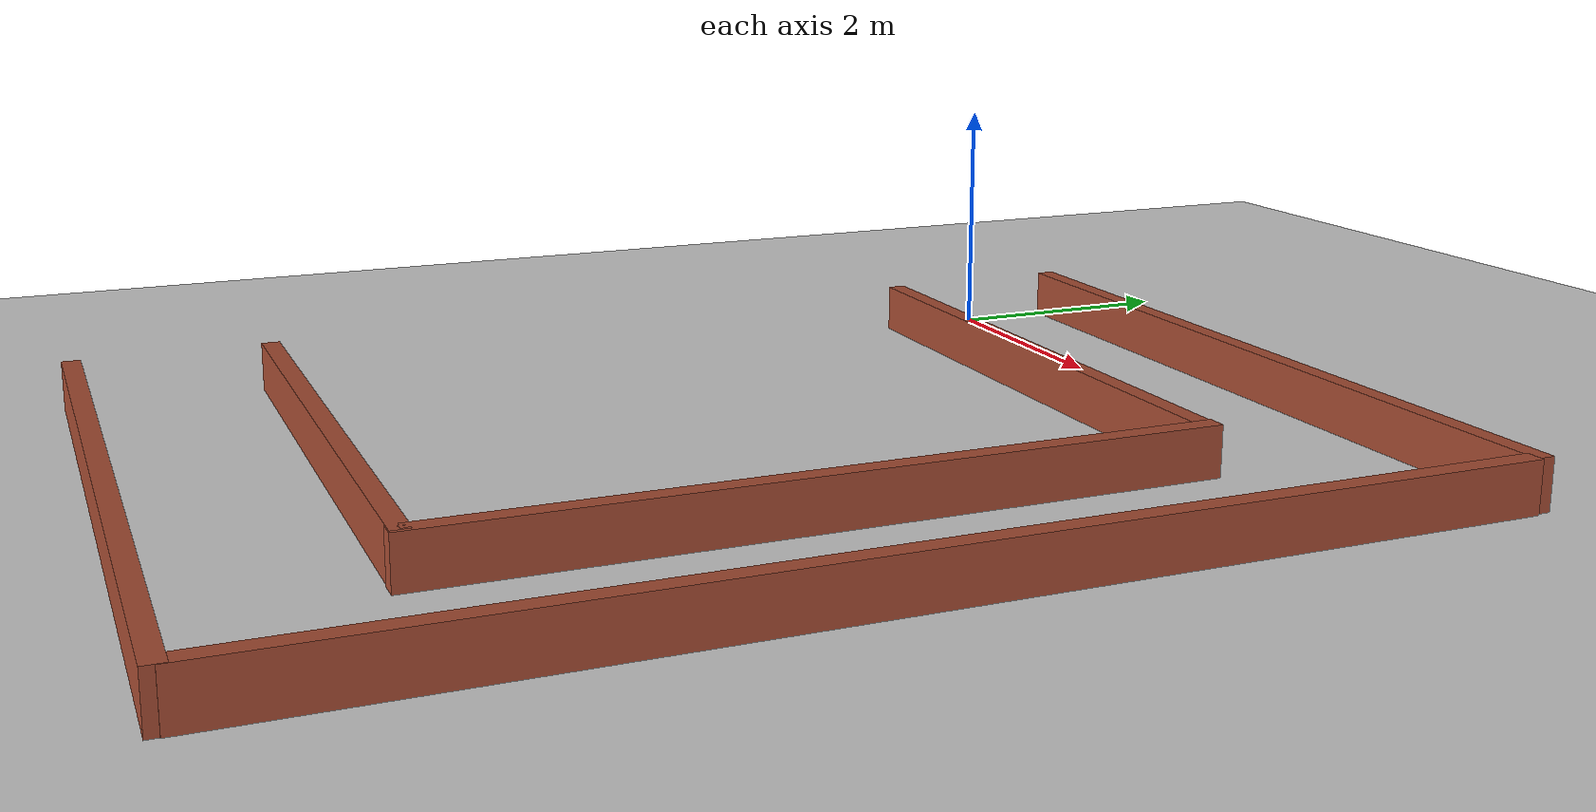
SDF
<sdf version="1.7">
 <world name="default">
  <light name="sun" type="directional">
   <pose>0 0 10 0 -0 0</pose>
   <diffuse>0.8 0.8 0.8 1</diffuse>
   <specular>0.2 0.2 0.2 1</specular>
   <attenuation>
    <range>1000</range>
    <constant>0.9</constant>
    <linear>0.01</linear>
    <quadratic>0.001</quadratic>
   </attenuation>
   <direction>-0.5 0.1 -0.9</direction>
   <spot><inner_angle>0</inner_angle><outer_angle>0</outer_angle><falloff>0</falloff></spot>
  </light>
  <model name="ground_plane">
   <static>1</static>
   <link name="link">
    <collision name="collision">
     <geometry><plane><normal>0 0 1</normal><size>100 100</size></plane></geometry>
     <surface>
      <contact><collide_bitmask>65535</collide_bitmask></contact>
      <friction><ode><mu>100</mu><mu2>50</mu2></ode></friction>
     </surface>
    </collision>
    <visual name="visual">
     <cast_shadows>0</cast_shadows>
     <geometry><plane><normal>0 0 1</normal><size>100 100</size></plane></geometry>
     <material>
      <script><uri>file://media/materials/scripts/gazebo.material</uri><name>Gazebo/Grey</name></script>
     </material>
    </visual>
   </link>
  </model>
  <gravity>0 0 -9.8</gravity>
  <magnetic_field>6e-06 2.3e-05 -4.2e-05</magnetic_field>
  <atmosphere type="adiabatic"/>
  <physics name="default_physics" default="0" type="ode">
   <max_step_size>0.001</max_step_size>
   <real_time_factor>1</real_time_factor>
   <real_time_update_rate>1000</real_time_update_rate>
  </physics>
  <scene><ambient>0.4 0.4 0.4 1</ambient><background>0.7 0.7 0.7 1</background><shadows>1</shadows></scene>
  <audio><device>default</device></audio>
  <spherical_coordinates>
   <surface_model>EARTH_WGS84</surface_model>
   <latitude_deg>0</latitude_deg>
   <longitude_deg>0</longitude_deg>
   <elevation>0</elevation>
   <heading_deg>0</heading_deg>
  </spherical_coordinates>
  <light name="user_point_light_0" type="point">
   <pose>1.68349 -3.40819 1 0 -0 0</pose>
   <diffuse>0.5 0.5 0.5 1</diffuse>
   <specular>0.1 0.1 0.1 1</specular>
   <attenuation>
    <range>20</range>
    <constant>0.5</constant>
    <linear>0.01</linear>
    <quadratic>0.001</quadratic>
   </attenuation>
   <cast_shadows>0</cast_shadows>
   <direction>0 0 -1</direction>
   <spot><inner_angle>0</inner_angle><outer_angle>0</outer_angle><falloff>0</falloff></spot>
  </light>
  <light name="user_point_light_1" type="point">
   <pose>1.78755 -8.87308 1 0 -0 0</pose>
   <diffuse>0.5 0.5 0.5 1</diffuse>
   <specular>0.1 0.1 0.1 1</specular>
   <attenuation>
    <range>20</range>
    <constant>0.5</constant>
    <linear>0.01</linear>
    <quadratic>0.001</quadratic>
   </attenuation>
   <cast_shadows>0</cast_shadows>
   <direction>0 0 -1</direction>
   <spot><inner_angle>0</inner_angle><outer_angle>0</outer_angle><falloff>0</falloff></spot>
  </light>
  <light name="user_point_light_2" type="point">
   <pose>2.1786 3.20884 1 0 -0 0</pose>
   <diffuse>0.5 0.5 0.5 1</diffuse>
   <specular>0.1 0.1 0.1 1</specular>
   <attenuation>
    <range>20</range>
    <constant>0.5</constant>
    <linear>0.01</linear>
    <quadratic>0.001</quadratic>
   </attenuation>
   <cast_shadows>0</cast_shadows>
   <direction>0 0 -1</direction>
   <spot><inner_angle>0</inner_angle><outer_angle>0</outer_angle><falloff>0</falloff></spot>
  </light>
  <light name="user_point_light_3" type="point">
   <pose>8.72099 -4.79438 1 0 -0 0</pose>
   <diffuse>0.5 0.5 0.5 1</diffuse>
   <specular>0.1 0.1 0.1 1</specular>
   <attenuation>
    <range>20</range>
    <constant>0.5</constant>
    <linear>0.01</linear>
    <quadratic>0.001</quadratic>
   </attenuation>
   <cast_shadows>0</cast_shadows>
   <direction>0 0 -1</direction>
   <spot><inner_angle>0</inner_angle><outer_angle>0</outer_angle><falloff>0</falloff></spot>
  </light>
  <light name="user_spot_light_0" type="spot">
   <pose>5 0 1 0 -0 0</pose>
   <diffuse>0.5 0.5 0.5 1</diffuse>
   <specular>0.1 0.1 0.1 1</specular>
   <direction>0 0 -1</direction>
   <attenuation>
    <range>20</range>
    <constant>0.5</constant>
    <linear>0.01</linear>
    <quadratic>0.001</quadratic>
   </attenuation>
   <cast_shadows>0</cast_shadows>
   <spot><inner_angle>0.6</inner_angle><outer_angle>1</outer_angle><falloff>1</falloff></spot>
  </light>
  <light name="user_spot_light_1" type="spot">
   <pose>5 -7 1 0 -0 0</pose>
   <diffuse>0.5 0.5 0.5 1</diffuse>
   <specular>0.1 0.1 0.1 1</specular>
   <direction>0 0 -1</direction>
   <attenuation>
    <range>20</range>
    <constant>0.5</constant>
    <linear>0.01</linear>
    <quadratic>0.001</quadratic>
   </attenuation>
   <cast_shadows>0</cast_shadows>
   <spot><inner_angle>0.6</inner_angle><outer_angle>1</outer_angle><falloff>1</falloff></spot>
  </light>
  <light name="user_spot_light_2" type="spot">
   <pose>-0.938892 -7.21218 1 0 -0 0</pose>
   <diffuse>0.5 0.5 0.5 1</diffuse>
   <specular>0.1 0.1 0.1 1</specular>
   <direction>0 0 -1</direction>
   <attenuation>
    <range>20</range>
    <constant>0.5</constant>
    <linear>0.01</linear>
    <quadratic>0.001</quadratic>
   </attenuation>
   <cast_shadows>0</cast_shadows>
   <spot><inner_angle>0.6</inner_angle><outer_angle>1</outer_angle><falloff>1</falloff></spot>
  </light>
  <model name="herradura_derecha">
   <link name="Wall_4">
    <pose>7.47142 1.33998 0 0 -0 3.14159</pose>
    <inertial>
     <mass>1</mass>
     <inertia><ixx>1</ixx><ixy>0</ixy><ixz>0</ixz><iyy>1</iyy><iyz>0</iyz><izz>1</izz></inertia>
    </inertial>
    <visual name="Wall_4_Visual">
     <pose>0 0 0.2 0 -0 0</pose>
     <geometry><box><size>6 0.15 0.4</size></box></geometry>
     <material>
      <script><uri>file://media/materials/scripts/gazebo.material</uri><name>Gazebo/Bricks</name></script>
      <ambient>1 1 1 1</ambient>
      <shader type="vertex"><normal_map>__default__</normal_map></shader>
      <diffuse>1 1 1 1</diffuse>
      <specular>0.2 0.2 0.2 1</specular>
      <emissive>0 0 0 1</emissive>
     </material>
     <meta><layer>0</layer></meta>
    </visual>
    <collision name="Wall_4_Collision">
     <pose>0 0 0.2 0 -0 0</pose>
     <geometry><box><size>6 0.15 0.4</size></box></geometry>
     <surface>
      <friction>
       <ode><mu>1</mu><mu2>1</mu2><fdir1>0 0 0</fdir1><slip1>0</slip1><slip2>0</slip2></ode>
       <torsional>
        <coefficient>1</coefficient>
        <patch_radius>0</patch_radius>
        <surface_radius>0</surface_radius>
        <use_patch_radius>1</use_patch_radius>
        <ode><slip>0</slip></ode>
       </torsional>
      </friction>
      <bounce><restitution_coefficient>0</restitution_coefficient><threshold>1e+06</threshold></bounce>
      <contact>
       <collide_without_contact>0</collide_without_contact>
       <collide_without_contact_bitmask>1</collide_without_contact_bitmask>
       <collide_bitmask>1</collide_bitmask>
       <ode>
        <soft_cfm>0</soft_cfm>
        <soft_erp>0.2</soft_erp>
        <kp>1e+13</kp>
        <kd>1</kd>
        <max_vel>0.01</max_vel>
        <min_depth>0</min_depth>
       </ode>
       <bullet>
        <split_impulse>1</split_impulse>
        <split_impulse_penetration_threshold>-0.01</split_impulse_penetration_threshold>
        <soft_cfm>0</soft_cfm>
        <soft_erp>0.2</soft_erp>
        <kp>1e+13</kp>
        <kd>1</kd>
       </bullet>
      </contact>
     </surface>
    </collision>
   </link>
   <link name="Wall_5">
    <pose>4.56027 -1.0858 0 0 0 -1.5708</pose>
    <inertial>
     <mass>1</mass>
     <inertia><ixx>1</ixx><ixy>0</ixy><ixz>0</ixz><iyy>1</iyy><iyz>0</iyz><izz>1</izz></inertia>
    </inertial>
    <visual name="Wall_5_Visual">
     <pose>0 0 0.2 0 -0 0</pose>
     <geometry><box><size>5 0.15 0.4</size></box></geometry>
     <material>
      <script><uri>file://media/materials/scripts/gazebo.material</uri><name>Gazebo/Bricks</name></script>
      <ambient>1 1 1 1</ambient>
      <shader type="vertex"><normal_map>__default__</normal_map></shader>
      <diffuse>1 1 1 1</diffuse>
      <specular>0.2 0.2 0.2 1</specular>
      <emissive>0 0 0 1</emissive>
     </material>
     <meta><layer>0</layer></meta>
    </visual>
    <collision name="Wall_5_Collision">
     <pose>0 0 0.2 0 -0 0</pose>
     <geometry><box><size>5 0.15 0.4</size></box></geometry>
     <surface>
      <friction>
       <ode><mu>1</mu><mu2>1</mu2><fdir1>0 0 0</fdir1><slip1>0</slip1><slip2>0</slip2></ode>
       <torsional>
        <coefficient>1</coefficient>
        <patch_radius>0</patch_radius>
        <surface_radius>0</surface_radius>
        <use_patch_radius>1</use_patch_radius>
        <ode><slip>0</slip></ode>
       </torsional>
      </friction>
      <bounce><restitution_coefficient>0</restitution_coefficient><threshold>1e+06</threshold></bounce>
      <contact>
       <collide_without_contact>0</collide_without_contact>
       <collide_without_contact_bitmask>1</collide_without_contact_bitmask>
       <collide_bitmask>1</collide_bitmask>
       <ode>
        <soft_cfm>0</soft_cfm>
        <soft_erp>0.2</soft_erp>
        <kp>1e+13</kp>
        <kd>1</kd>
        <max_vel>0.01</max_vel>
        <min_depth>0</min_depth>
       </ode>
       <bullet>
        <split_impulse>1</split_impulse>
        <split_impulse_penetration_threshold>-0.01</split_impulse_penetration_threshold>
        <soft_cfm>0</soft_cfm>
        <soft_erp>0.2</soft_erp>
        <kp>1e+13</kp>
        <kd>1</kd>
       </bullet>
      </contact>
     </surface>
    </collision>
   </link>
   <link name="Wall_5_clone">
    <pose>2.92236 -0.362849 0 0 -0 1.5708</pose>
    <inertial>
     <mass>1</mass>
     <inertia><ixx>1</ixx><ixy>0</ixy><ixz>0</ixz><iyy>1</iyy><iyz>0</iyz><izz>1</izz></inertia>
    </inertial>
    <visual name="Wall_5_Visual">
     <pose>0 0 0.2 0 -0 0</pose>
     <geometry><box><size>6.5 0.15 0.4</size></box></geometry>
     <material>
      <script><uri>file://media/materials/scripts/gazebo.material</uri><name>Gazebo/Bricks</name></script>
      <ambient>1 1 1 1</ambient>
      <shader type="vertex"><normal_map>__default__</normal_map></shader>
      <diffuse>1 1 1 1</diffuse>
      <specular>0.2 0.2 0.2 1</specular>
      <emissive>0 0 0 1</emissive>
     </material>
     <meta><layer>0</layer></meta>
    </visual>
    <collision name="Wall_5_Collision">
     <pose>0 0 0.2 0 -0 0</pose>
     <geometry><box><size>6.5 0.15 0.4</size></box></geometry>
     <surface>
      <friction>
       <ode><mu>1</mu><mu2>1</mu2><fdir1>0 0 0</fdir1><slip1>0</slip1><slip2>0</slip2></ode>
       <torsional>
        <coefficient>1</coefficient>
        <patch_radius>0</patch_radius>
        <surface_radius>0</surface_radius>
        <use_patch_radius>1</use_patch_radius>
        <ode><slip>0</slip></ode>
       </torsional>
      </friction>
      <bounce><restitution_coefficient>0</restitution_coefficient><threshold>1e+06</threshold></bounce>
      <contact>
       <collide_without_contact>0</collide_without_contact>
       <collide_without_contact_bitmask>1</collide_without_contact_bitmask>
       <collide_bitmask>1</collide_bitmask>
       <ode>
        <soft_cfm>0</soft_cfm>
        <soft_erp>0.2</soft_erp>
        <kp>1e+13</kp>
        <kd>1</kd>
        <max_vel>0.01</max_vel>
        <min_depth>0</min_depth>
       </ode>
       <bullet>
        <split_impulse>1</split_impulse>
        <split_impulse_penetration_threshold>-0.01</split_impulse_penetration_threshold>
        <soft_cfm>0</soft_cfm>
        <soft_erp>0.2</soft_erp>
        <kp>1e+13</kp>
        <kd>1</kd>
       </bullet>
      </contact>
     </surface>
    </collision>
   </link>
   <link name="Wall_5_clone_0">
    <pose>10.3889 -1.11713 0 0 0 -1.5708</pose>
    <inertial>
     <mass>1</mass>
     <inertia><ixx>1</ixx><ixy>0</ixy><ixz>0</ixz><iyy>1</iyy><iyz>0</iyz><izz>1</izz></inertia>
    </inertial>
    <visual name="Wall_5_Visual">
     <pose>0 0 0.2 0 -0 0</pose>
     <geometry><box><size>5 0.15 0.4</size></box></geometry>
     <material>
      <script><uri>file://media/materials/scripts/gazebo.material</uri><name>Gazebo/Bricks</name></script>
      <ambient>1 1 1 1</ambient>
      <shader type="vertex"><normal_map>__default__</normal_map></shader>
      <diffuse>1 1 1 1</diffuse>
      <specular>0.2 0.2 0.2 1</specular>
      <emissive>0 0 0 1</emissive>
     </material>
     <meta><layer>0</layer></meta>
    </visual>
    <collision name="Wall_5_Collision">
     <pose>0 0 0.2 0 -0 0</pose>
     <geometry><box><size>5 0.15 0.4</size></box></geometry>
     <surface>
      <friction>
       <ode><mu>1</mu><mu2>1</mu2><fdir1>0 0 0</fdir1><slip1>0</slip1><slip2>0</slip2></ode>
       <torsional>
        <coefficient>1</coefficient>
        <patch_radius>0</patch_radius>
        <surface_radius>0</surface_radius>
        <use_patch_radius>1</use_patch_radius>
        <ode><slip>0</slip></ode>
       </torsional>
      </friction>
      <bounce><restitution_coefficient>0</restitution_coefficient><threshold>1e+06</threshold></bounce>
      <contact>
       <collide_without_contact>0</collide_without_contact>
       <collide_without_contact_bitmask>1</collide_without_contact_bitmask>
       <collide_bitmask>1</collide_bitmask>
       <ode>
        <soft_cfm>0</soft_cfm>
        <soft_erp>0.2</soft_erp>
        <kp>1e+13</kp>
        <kd>1</kd>
        <max_vel>0.01</max_vel>
        <min_depth>0</min_depth>
       </ode>
       <bullet>
        <split_impulse>1</split_impulse>
        <split_impulse_penetration_threshold>-0.01</split_impulse_penetration_threshold>
        <soft_cfm>0</soft_cfm>
        <soft_erp>0.2</soft_erp>
        <kp>1e+13</kp>
        <kd>1</kd>
       </bullet>
      </contact>
     </surface>
    </collision>
   </link>
   <link name="Wall_7">
    <pose>11.9739 -0.354666 0 0 -0 1.5708</pose>
    <inertial>
     <mass>1</mass>
     <inertia><ixx>1</ixx><ixy>0</ixy><ixz>0</ixz><iyy>1</iyy><iyz>0</iyz><izz>1</izz></inertia>
    </inertial>
    <visual name="Wall_7_Visual">
     <pose>0 0 0.2 0 -0 0</pose>
     <geometry><box><size>6.5 0.15 0.4</size></box></geometry>
     <material>
      <script><uri>file://media/materials/scripts/gazebo.material</uri><name>Gazebo/Bricks</name></script>
      <ambient>1 1 1 1</ambient>
      <shader type="vertex"><normal_map>__default__</normal_map></shader>
      <diffuse>1 1 1 1</diffuse>
      <specular>0.2 0.2 0.2 1</specular>
      <emissive>0 0 0 1</emissive>
     </material>
     <meta><layer>0</layer></meta>
    </visual>
    <collision name="Wall_7_Collision">
     <pose>0 0 0.2 0 -0 0</pose>
     <geometry><box><size>6.5 0.15 0.4</size></box></geometry>
     <surface>
      <friction>
       <ode><mu>1</mu><mu2>1</mu2><fdir1>0 0 0</fdir1><slip1>0</slip1><slip2>0</slip2></ode>
       <torsional>
        <coefficient>1</coefficient>
        <patch_radius>0</patch_radius>
        <surface_radius>0</surface_radius>
        <use_patch_radius>1</use_patch_radius>
        <ode><slip>0</slip></ode>
       </torsional>
      </friction>
      <bounce><restitution_coefficient>0</restitution_coefficient><threshold>1e+06</threshold></bounce>
      <contact>
       <collide_without_contact>0</collide_without_contact>
       <collide_without_contact_bitmask>1</collide_without_contact_bitmask>
       <collide_bitmask>1</collide_bitmask>
       <ode>
        <soft_cfm>0</soft_cfm>
        <soft_erp>0.2</soft_erp>
        <kp>1e+13</kp>
        <kd>1</kd>
        <max_vel>0.01</max_vel>
        <min_depth>0</min_depth>
       </ode>
       <bullet>
        <split_impulse>1</split_impulse>
        <split_impulse_penetration_threshold>-0.01</split_impulse_penetration_threshold>
        <soft_cfm>0</soft_cfm>
        <soft_erp>0.2</soft_erp>
        <kp>1e+13</kp>
        <kd>1</kd>
       </bullet>
      </contact>
     </surface>
    </collision>
   </link>
   <link name="Wall_8">
    <pose>7.46529 2.83297 0 0 -0 3.14065</pose>
    <inertial>
     <mass>1</mass>
     <inertia><ixx>1</ixx><ixy>0</ixy><ixz>0</ixz><iyy>1</iyy><iyz>0</iyz><izz>1</izz></inertia>
    </inertial>
    <visual name="Wall_8_Visual">
     <pose>0 0 0.2 0 -0 0</pose>
     <geometry><box><size>9 0.15 0.4</size></box></geometry>
     <material>
      <script><uri>file://media/materials/scripts/gazebo.material</uri><name>Gazebo/Bricks</name></script>
      <ambient>1 1 1 1</ambient>
      <shader type="vertex"><normal_map>__default__</normal_map></shader>
      <diffuse>1 1 1 1</diffuse>
      <specular>0.2 0.2 0.2 1</specular>
      <emissive>0 0 0 1</emissive>
     </material>
     <meta><layer>0</layer></meta>
    </visual>
    <collision name="Wall_8_Collision">
     <pose>0 0 0.2 0 -0 0</pose>
     <geometry><box><size>9 0.15 0.4</size></box></geometry>
     <surface>
      <friction>
       <ode><mu>1</mu><mu2>1</mu2><fdir1>0 0 0</fdir1><slip1>0</slip1><slip2>0</slip2></ode>
       <torsional>
        <coefficient>1</coefficient>
        <patch_radius>0</patch_radius>
        <surface_radius>0</surface_radius>
        <use_patch_radius>1</use_patch_radius>
        <ode><slip>0</slip></ode>
       </torsional>
      </friction>
      <bounce><restitution_coefficient>0</restitution_coefficient><threshold>1e+06</threshold></bounce>
      <contact>
       <collide_without_contact>0</collide_without_contact>
       <collide_without_contact_bitmask>1</collide_without_contact_bitmask>
       <collide_bitmask>1</collide_bitmask>
       <ode>
        <soft_cfm>0</soft_cfm>
        <soft_erp>0.2</soft_erp>
        <kp>1e+13</kp>
        <kd>1</kd>
        <max_vel>0.01</max_vel>
        <min_depth>0</min_depth>
       </ode>
       <bullet>
        <split_impulse>1</split_impulse>
        <split_impulse_penetration_threshold>-0.01</split_impulse_penetration_threshold>
        <soft_cfm>0</soft_cfm>
        <soft_erp>0.2</soft_erp>
        <kp>1e+13</kp>
        <kd>1</kd>
       </bullet>
      </contact>
     </surface>
    </collision>
   </link>
   <static>1</static>
   <pose>3.61165 3.75219 0 0 0 -1.5708</pose>
  </model>
 </world>
</sdf>
